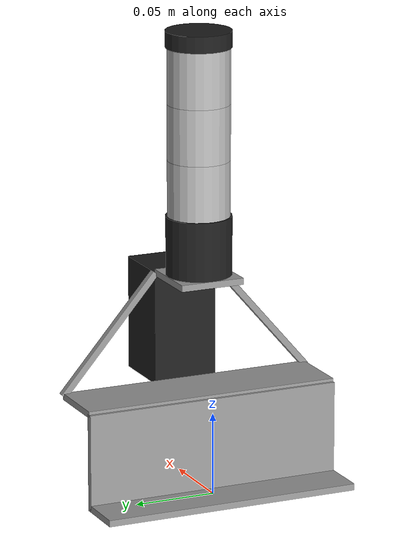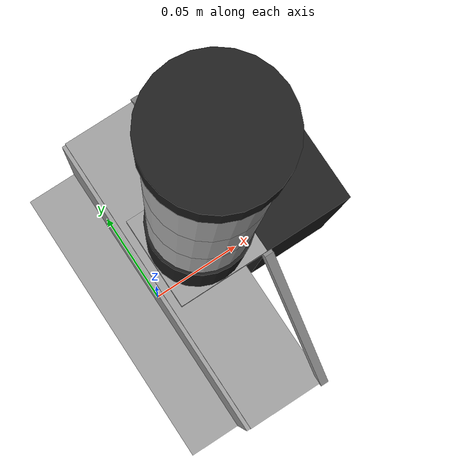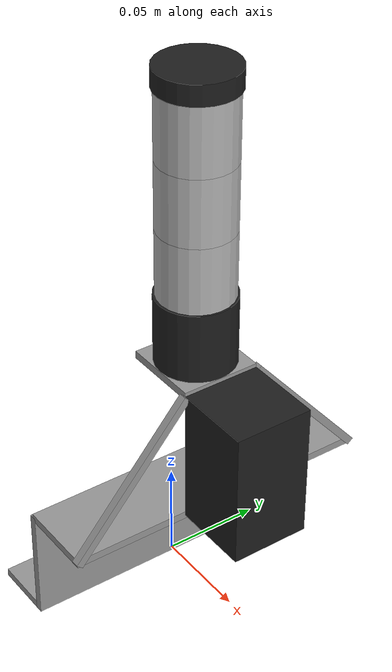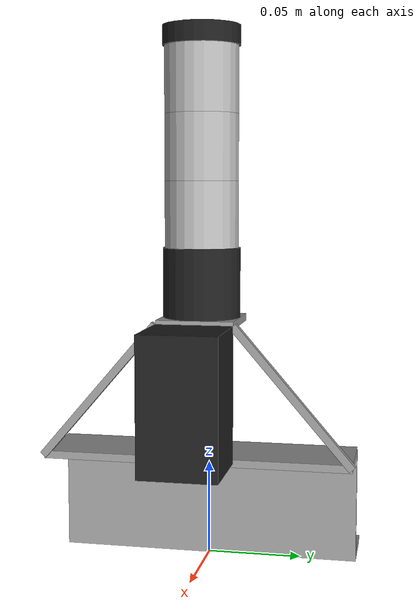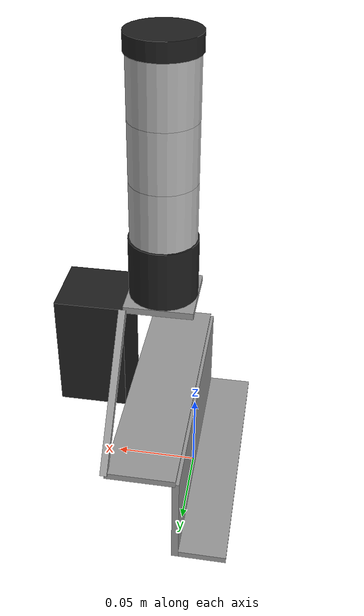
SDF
<?xml version="1.0" ?>
<sdf version="1.4">
  <model name="machine">

    <!-- facing in x direction -->

    <static>true</static>
    <link name="machine_link">
      <collision name="ground_plate_collision">
        <pose>-0.015 0 0.002 0 0 0 </pose>
	<geometry>
          <box>
            <size>0.03 0.16 0.004</size>
          </box>
        </geometry>
      </collision>
      <visual name="ground_plate_visual">
        <pose>-0.015 0 0.002 0 0 0 </pose>
	<cast_shadows>false</cast_shadows>
        <geometry>
	  <box>
	    <size>0.03 0.16 0.004</size>
          </box>
        </geometry>
	<material>
	  <script>
	    <uri>file://media/materials/scripts/gazebo.material</uri>
	    <name>Gazebo/Grey</name>
	  </script>
	</material>
      </visual>
      <collision name="low_plate_collision">
        <pose>0 0 0.03 0 0 0 </pose>
	<geometry>
          <box>
            <size>0.004 0.16 0.06</size>
          </box>
        </geometry>
      </collision>
      <visual name="low_plate_visual">
        <pose>0 0 0.03 0 0 0 </pose>
	<cast_shadows>false</cast_shadows>
        <geometry>
	  <box>
	    <size>0.004 0.16 0.06</size>
          </box>
        </geometry>
	<material>
	  <script>
	    <uri>file://media/materials/scripts/gazebo.material</uri>
	    <name>Gazebo/Grey</name>
	  </script>
	</material>
      </visual>
      <collision name="middle_plate_collision">
        <pose>0.02 0 0.06 0 0 0 </pose>
	<geometry>
          <box>
            <size>0.04 0.16 0.004</size>
          </box>
        </geometry>
      </collision>
      <visual name="middle_plate_visual">
        <pose>0.02 0 0.06 0 0 0 </pose>
	<cast_shadows>false</cast_shadows>
        <geometry>
	  <box>
            <size>0.04 0.16 0.004</size>
          </box>
        </geometry>
	<material>
	  <script>
	    <uri>file://media/materials/scripts/gazebo.material</uri>
	    <name>Gazebo/Grey</name>
	  </script>
	</material>
      </visual>
      <collision name="uppest_plate_collision">
        <pose>0.02 0 0.13 0 0 0 </pose>
	<geometry>
          <box>
            <size>0.04 0.04 0.004</size>
          </box>
        </geometry>
      </collision>
      <visual name="uppest_plate_visual">
        <pose>0.02 0 0.13 0 0 0 </pose>
	<cast_shadows>false</cast_shadows>
        <geometry>
	  <box>
            <size>0.04 0.04 0.004</size>
          </box>
        </geometry>
	<material>
	  <script>
	    <uri>file://media/materials/scripts/gazebo.material</uri>
	    <name>Gazebo/Grey</name>
	  </script>
	</material>
      </visual>
    <!-- only two sticks, I don't have triangles -->
      <collision name="upper_plate_left_collision">
        <pose>0.04 -0.05 0.095 0.86 0 0 </pose>
	<geometry>
          <box>
            <size>0.004 0.092 0.004</size>
          </box>
        </geometry>
      </collision>
      <visual name="upper_plate_left_visual">
        <pose>0.04 -0.05 0.095 0.86 0 0 </pose>
	<cast_shadows>false</cast_shadows>
        <geometry>
	  <box>
	    <size>0.004 0.092 0.004</size>
          </box>
        </geometry>
	<material>
	  <script>
	    <uri>file://media/materials/scripts/gazebo.material</uri>
	    <name>Gazebo/Grey</name>
	  </script>
	</material>
      </visual>
      <collision name="upper_plate_right_collision">
        <pose>0.04 0.05 0.095 -0.86 0 0 </pose>
	<geometry>
          <box>
            <size>0.004 0.092 0.004</size>
          </box>
        </geometry>
      </collision>
      <visual name="upper_plate_right_visual">
        <pose>0.04 0.05 0.095 -0.86 0 0 </pose>
	<cast_shadows>false</cast_shadows>
        <geometry>
	  <box>
	    <size>0.004 0.092 0.004</size>
          </box>
        </geometry>
	<material>
	  <script>
	    <uri>file://media/materials/scripts/gazebo.material</uri>
	    <name>Gazebo/Grey</name>
	  </script>
	</material>
      </visual>
    <!-- no cable -->
      <collision name="rfid_collision">
        <pose>0.06 0 0.095 0 0 0 </pose>
	<geometry>
          <box>
            <size>0.04 0.04 0.04</size>
          </box>
        </geometry>
      </collision>
      <visual name="rfid_visual">
        <pose>0.06 0 0.095 0 0 0 </pose>
	<cast_shadows>false</cast_shadows>
        <geometry>
	  <box>
            <size>0.04 0.04 0.07</size>
          </box>
        </geometry>
	<material>
	  <script>
            <uri>file://media/materials/scripts/gazebo.material</uri>
            <name>Gazebo/Black</name>
	  </script>
	</material>
      </visual>
      <collision name="trafficlight_collision">
        <pose>0.02 0 0.205 0 0 0 </pose>
	<geometry>
          <cylinder>
	    <radius>0.02</radius>
	    <length>0.15</length>
          </cylinder>
        </geometry>
      </collision>
      <visual name="upper_black_border">
        <pose>0.02 0 0.275 0 0 0 </pose>
	<cast_shadows>false</cast_shadows>
        <geometry>
          <cylinder>
	    <radius>0.02</radius>
	    <length>0.01</length>
          </cylinder>
        </geometry>
	<material>
	  <script>
            <uri>file://media/materials/scripts/gazebo.material</uri>
            <name>Gazebo/Black</name>
	  </script>
	</material>
      </visual>
      <visual name="red">
        <pose>0.02 0 0.253 0 0 0 </pose>
	<cast_shadows>false</cast_shadows>
        <geometry>
          <cylinder>
	    <radius>0.019</radius>
	    <length>0.034</length>
          </cylinder>
        </geometry>
	<material>
	  <ambient>0.8 0 0 0.8</ambient>
	  <diffuse>0.8 0.0 0.0 0.8</diffuse>
	  <emissive>0.0 0.0 0.0 0.0</emissive>
	</material>
	<transparency>0.9</transparency>
      </visual>
      <visual name="yellow">
        <pose>0.02 0 0.219 0 0 0 </pose>
	<cast_shadows>false</cast_shadows>
        <geometry>
          <cylinder>
	    <radius>0.019</radius>
	    <length>0.034</length>
          </cylinder>
        </geometry>
	<material>
	  <ambient>0.9 0.7 0 0.8</ambient>
	  <diffuse>0.9 0.7 0.0 0.8</diffuse>
	  <emissive>0.0 0.0 0.0 0.0</emissive>
	</material>
	<transparency>0.9</transparency>
      </visual>
      <visual name="green">
        <pose>0.02 0 0.185 0 0 0 </pose>
	<cast_shadows>false</cast_shadows>
        <geometry>
          <cylinder>
	    <radius>0.019</radius>
	    <length>0.034</length>
          </cylinder>
        </geometry>
	<material>
	  <ambient>0.0 0.8 0 0.8</ambient>
	  <diffuse>0.0 0.8 0.0 0.8</diffuse>
	  <emissive>0.0 0.0 0.0 0.0</emissive>
	</material>
	<transparency>0.9</transparency>
      </visual>
      <visual name="redon">
        <pose>0.02 0 0.253 0 0 0 </pose>
	<cast_shadows>false</cast_shadows>
        <geometry>
          <cylinder>
	    <radius>0.019</radius>
	    <length>0.034</length>
          </cylinder>
        </geometry>
      </visual>
      <visual name="yellowon">
        <pose>0.02 0 0.219 0 0 0 </pose>
	<cast_shadows>false</cast_shadows>
        <geometry>
          <cylinder>
	    <radius>0.019</radius>
	    <length>0.034</length>
          </cylinder>
        </geometry>
      </visual>
      <visual name="greenon">
        <pose>0.02 0 0.185 0 0 0 </pose>
	<cast_shadows>false</cast_shadows>
        <geometry>
          <cylinder>
	    <radius>0.019</radius>
	    <length>0.034</length>
          </cylinder>
        </geometry>
     </visual>
      <visual name="lower_black_border">
        <pose>0.02 0 0.149 0 0 0 </pose>
	<cast_shadows>false</cast_shadows>
        <geometry>
          <cylinder>
	    <radius>0.02</radius>
	    <length>0.038</length>
          </cylinder>
        </geometry>
	<material>
	  <script>
            <uri>file://media/materials/scripts/gazebo.material</uri>
            <name>Gazebo/Black</name>
	  </script>
	</material>
      </visual>
    </link>
  </model>
</sdf>
